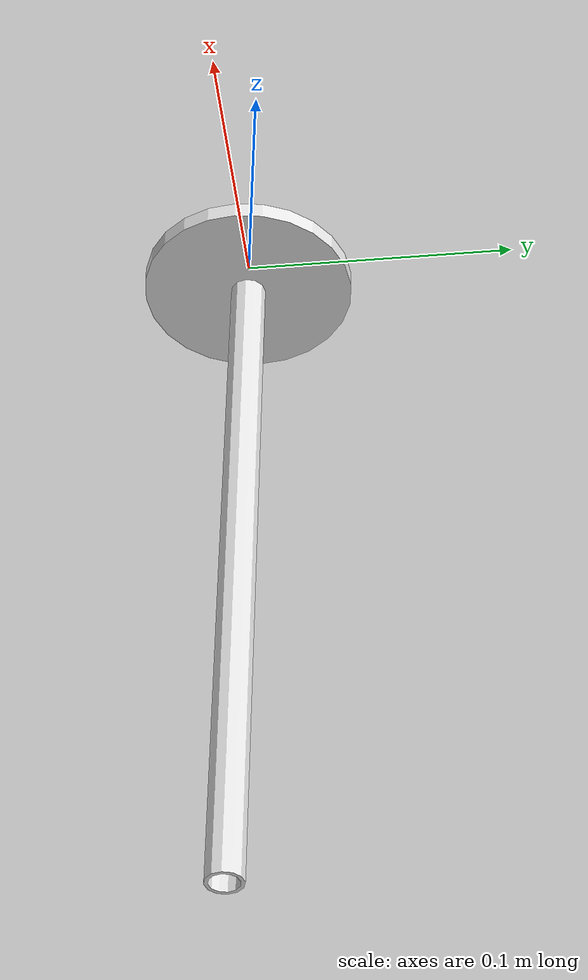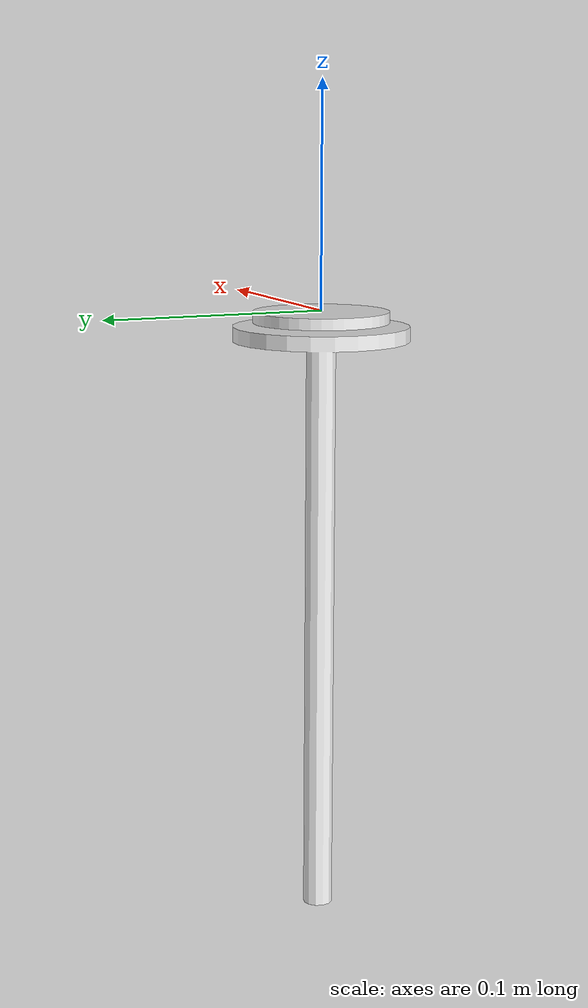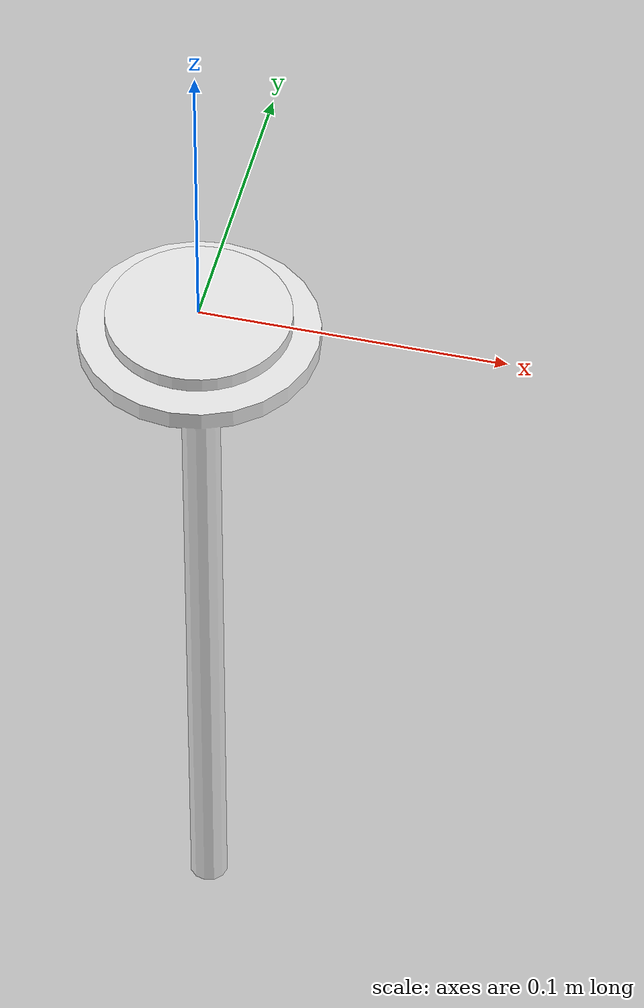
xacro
<?xml version="1.0" encoding="utf-8"?>

<robot  name="rokea"   xmlns:xacro="http://wiki.ros.org/xacro">

<!--link 4-->
  <link    name="tool_base_link">
    <inertial>
      <origin        xyz="0 0 0"        rpy="0 0 0" />
      <mass        value="0.01453" />
      <inertia
        ixx="3.22"
        ixy="2.35"
        ixz="3.38"
        iyy="3.22"
        iyz="-1.14"
        izz="6.36" />
    </inertial>

    <visual>
      <geometry>
        <mesh          filename="package://rokae_desk/meshes/tool_base_link.stl" />
      </geometry>
	      <origin rpy="0 0 0" xyz="0.0 0.0 0.0"/>
      <material name="white"/>
    </visual>

    <collision>
      <geometry>
        <cylinder length="0.04" radius="0.2"/>

        <mesh          filename="package://rokae_desk/meshes/tool_base_link.stl" />
      </geometry>
	    <origin rpy="0 0 0" xyz="0.0 0.0 0.0"/>
    </collision>

  </link>

   <joint    name="tool_taotong"    type="continuous">
    <parent      link="tool_base_link" />
    <child      link="tool_link" />
    <axis      xyz="0 0 -1" />
    <origin      xyz="0 0 0"      rpy="0 0 0" />
  </joint>

  <transmission name="tool_base_tran">
    <type>transmission_interface/SimpleTransmission</type>
    <joint name="tool_taotong">
      <hardwareInterface>hardware_interface/PositionJointInterface</hardwareInterface>
    </joint>
    <actuator name="motor_tool_base">
      <hardwareInterface>hardware_interface/PositionJointInterface</hardwareInterface>
      <mechanicalReduction>1</mechanicalReduction>
    </actuator>
  </transmission>

  <gazebo reference="tool_base_link">
     <material>Gazebo/Red</material>
  </gazebo>

<!-- tool_Link -->
  <link    name="tool_link">
    <visual>
      <geometry>
        <mesh          filename="package://rokae_desk/meshes/tool_Link.stl"  scale="1.3 1.3 1.3"/>

      </geometry>
	    <origin rpy="0 0 0" xyz="0 0 0"/>
      <material name="white"    />
    </visual>

    <inertial>
      <mass        value="0.0282087806682537" />
      <inertia
        ixx="0.000106"
        ixy="-8.0779"
        ixz="-3.99"
        iyy="0.000106"
        iyz="-1.185"
        izz="6.544" />      <origin        xyz="5.20417042793042E-18 3.79470760369927E-19 -0.0550139882029437"        rpy="0 0 0" />
    </inertial>

    <collision>
      <geometry>
        <cylinder length="0.3" radius="0.02"/>
        <mesh          filename="package://rokae_desk/meshes/tool_Link.stl" />
      </geometry>
	    <origin rpy="0 0 0" xyz="0 0 0"/>
    </collision>

  </link>

  <gazebo reference="tool_Link">
     <material>Gazebo/Red</material>
  </gazebo>

</robot>
